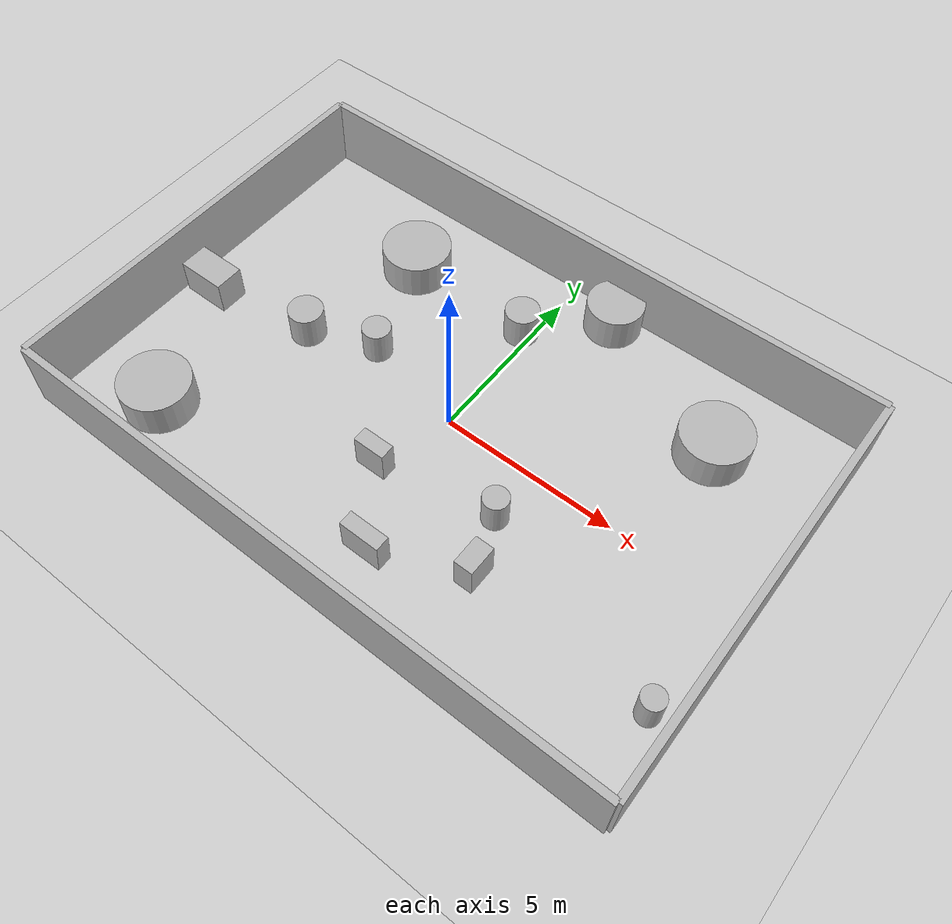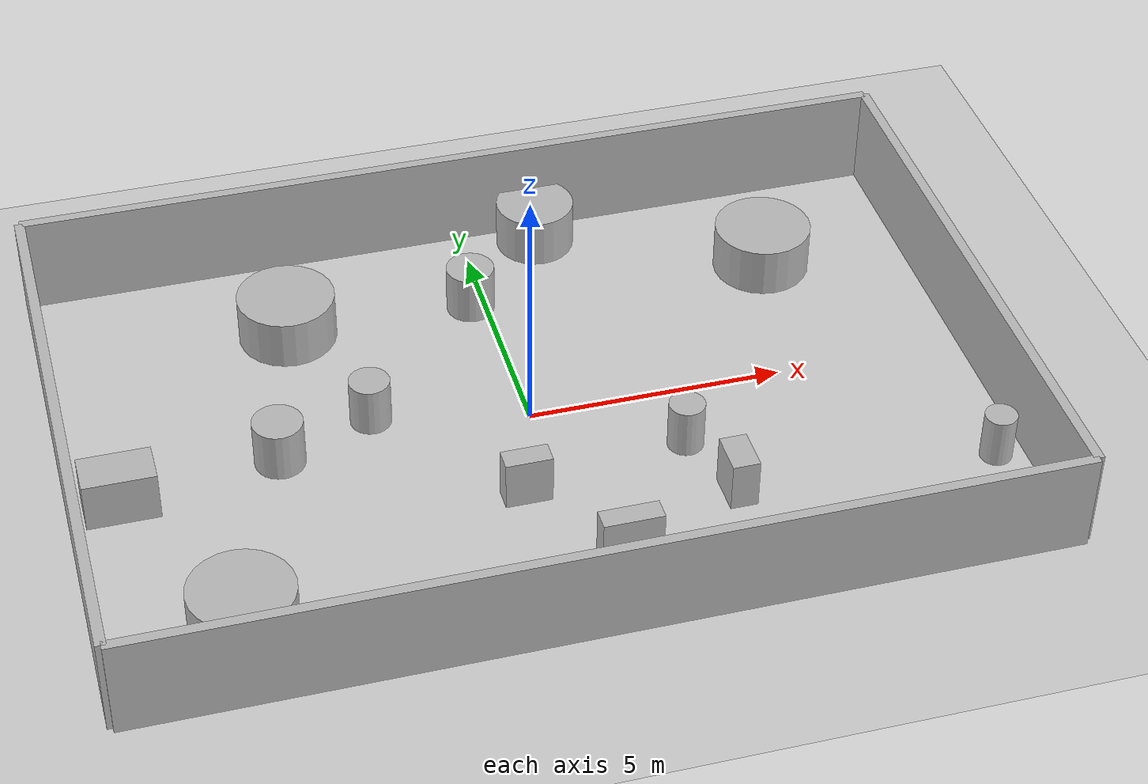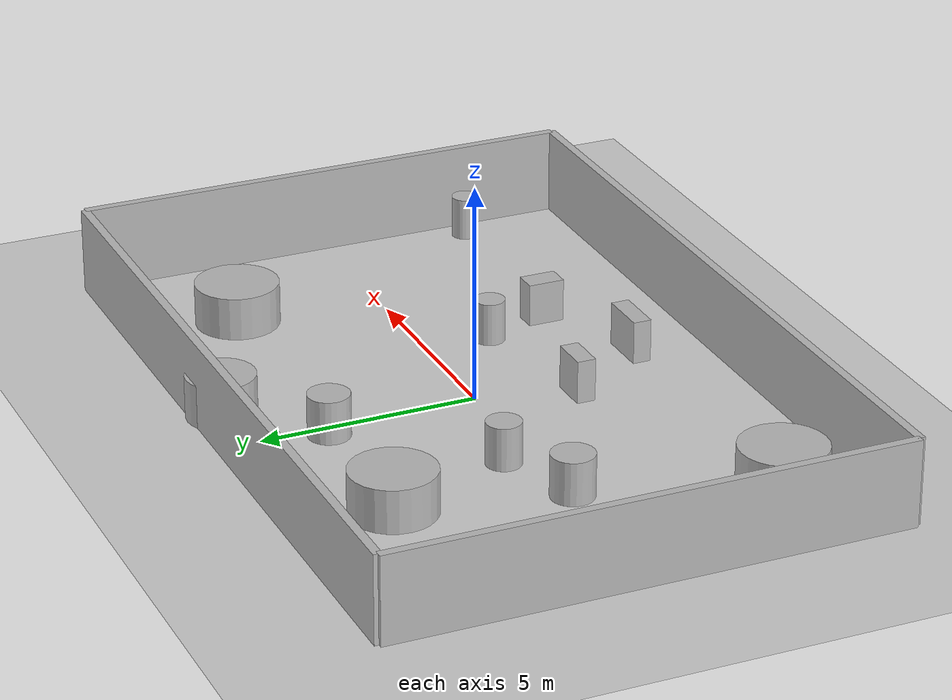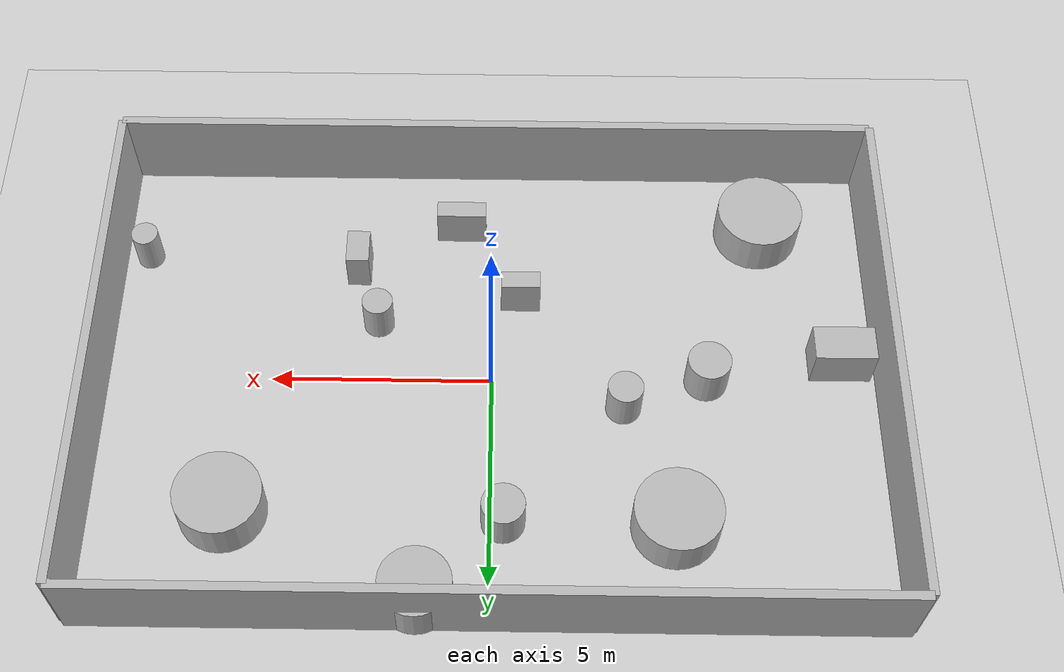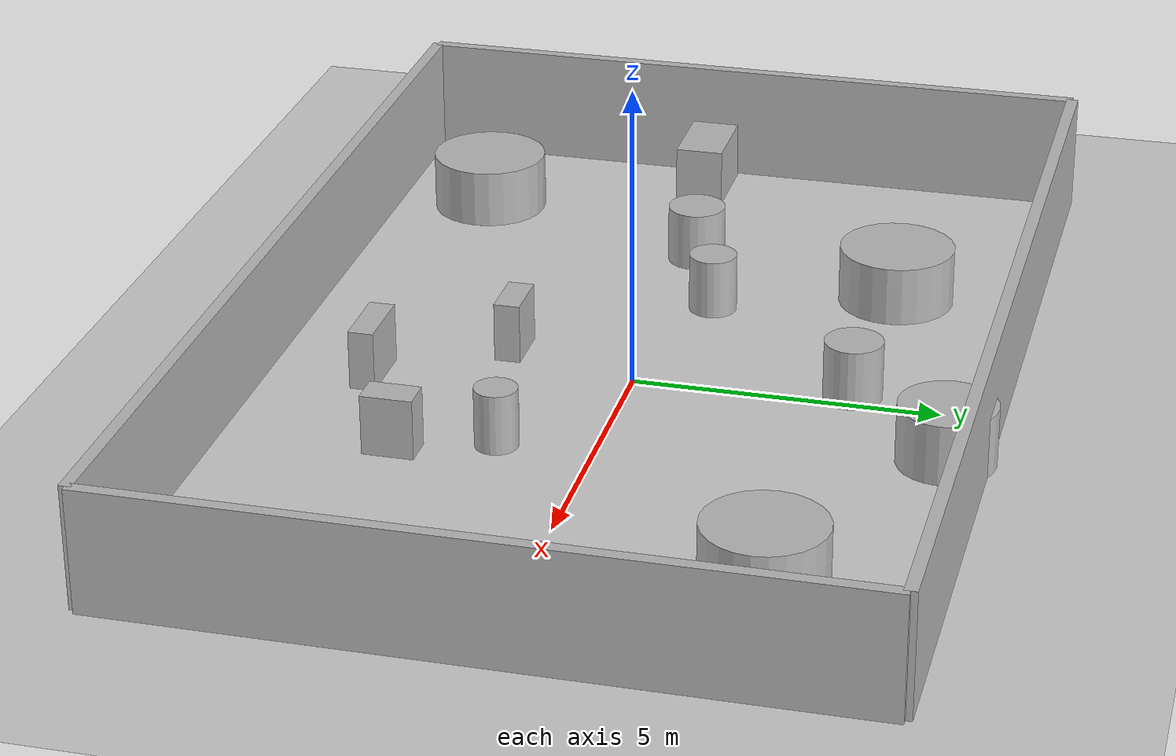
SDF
<?xml version="1.0"?>
<sdf version="1.6">
  <world name="env_99">

    <include><uri>model://ground_plane</uri></include>
    <include><uri>model://sun</uri></include>

    <!-- WALLS -->
    <model name="wall_north"><static>true</static><pose>0 5.911031012696287 1 0 0 0</pose>
      <link name="link"><collision name="collision">
        <geometry><box><size>17.67188668978008 0.2 2</size></box></geometry>
      </collision><visual name="visual">
        <geometry><box><size>17.67188668978008 0.2 2</size></box></geometry>
      </visual></link>
    </model>

    <model name="wall_south"><static>true</static><pose>0 -5.911031012696287 1 0 0 0</pose>
      <link name="link"><collision name="collision">
        <geometry><box><size>17.67188668978008 0.2 2</size></box></geometry>
      </collision><visual name="visual">
        <geometry><box><size>17.67188668978008 0.2 2</size></box></geometry>
      </visual></link>
    </model>

    <model name="wall_east"><static>true</static><pose>8.83594334489004 0 1 0 0 1.57</pose>
      <link name="link"><collision name="collision">
        <geometry><box><size>11.822062025392574 0.2 2</size></box></geometry>
      </collision><visual name="visual">
        <geometry><box><size>11.822062025392574 0.2 2</size></box></geometry>
      </visual></link>
    </model>

    <model name="wall_west"><static>true</static><pose>-8.83594334489004 0 1 0 0 1.57</pose>
      <link name="link"><collision name="collision">
        <geometry><box><size>11.822062025392574 0.2 2</size></box></geometry>
      </collision><visual name="visual">
        <geometry><box><size>11.822062025392574 0.2 2</size></box></geometry>
      </visual></link>
    </model>

    <!-- SENSOR -->

    <model name="lidar_sensor">
      <static>true</static>
      <pose>-4.050110909966754 -1.6473888161850012 0.4 0 0 0</pose>
      <link name="link">
        <sensor name="lidar" type="ray">
          <pose>0 0 0 0 0 0</pose>
          <visualize>true</visualize>
          <always_on>true</always_on>
          <update_rate>10</update_rate>
          <ray>
            <scan><horizontal>
              <samples>90</samples>
              <resolution>1</resolution>
              <min_angle>-3.14159</min_angle>
              <max_angle>3.14159</max_angle>
            </horizontal></scan>
            <range><min>0.15</min><max>20.0</max><resolution>0.01</resolution></range>
          </ray>
          <plugin name="lidar_plugin" filename="liblidar_plugin.so"/>
        </sensor>
      </link>
    </model>

    <!-- OBSTACLES -->

    <model name="obstacle_0">
      <static>true</static>
      <pose>-7.935569302428767 -0.556256017644503 0.5 0 0 0</pose>
      <link name="link">
        <collision name="collision">
          <geometry><box><size>1.39 0.83 1.0</size></box></geometry>
        </collision>
        <visual name="visual">
          <geometry><box><size>1.39 0.83 1.0</size></box></geometry>
        </visual>
      </link>
    </model>

    <model name="obstacle_1">
      <static>true</static>
      <pose>-0.6460049235547727 -2.1581690986703883 0.5 0 0 0</pose>
      <link name="link">
        <collision name="collision">
          <geometry><box><size>0.9 0.43 1.0</size></box></geometry>
        </collision>
        <visual name="visual">
          <geometry><box><size>0.9 0.43 1.0</size></box></geometry>
        </visual>
      </link>
    </model>

    <model name="obstacle_2">
      <static>true</static>
      <pose>0.7619103517793544 -4.137849236651459 0.5 0 0 0</pose>
      <link name="link">
        <collision name="collision">
          <geometry><box><size>1.15 0.42 1.0</size></box></geometry>
        </collision>
        <visual name="visual">
          <geometry><box><size>1.15 0.42 1.0</size></box></geometry>
        </visual>
      </link>
    </model>

    <model name="obstacle_3">
      <static>true</static>
      <pose>1.512641907045845 5.318296986352842 0.5 0 0 0</pose>
      <link name="link">
        <collision name="collision">
          <geometry><cylinder><radius>0.79</radius><length>1.0</length></cylinder></geometry>
        </collision>
        <visual name="visual">
          <geometry><cylinder><radius>0.79</radius><length>1.0</length></cylinder></geometry>
        </visual>
      </link>
    </model>

    <model name="obstacle_4">
      <static>true</static>
      <pose>5.783840175625224 3.3577693230399808 0.5 0 0 0</pose>
      <link name="link">
        <collision name="collision">
          <geometry><cylinder><radius>0.97</radius><length>1.0</length></cylinder></geometry>
        </collision>
        <visual name="visual">
          <geometry><cylinder><radius>0.97</radius><length>1.0</length></cylinder></geometry>
        </visual>
      </link>
    </model>

    <model name="obstacle_5">
      <static>true</static>
      <pose>8.177270276843139 -3.333133592307585 0.5 0 0 0</pose>
      <link name="link">
        <collision name="collision">
          <geometry><cylinder><radius>0.31</radius><length>1.0</length></cylinder></geometry>
        </collision>
        <visual name="visual">
          <geometry><cylinder><radius>0.31</radius><length>1.0</length></cylinder></geometry>
        </visual>
      </link>
    </model>

    <model name="obstacle_6">
      <static>true</static>
      <pose>-6.286540681943146 -4.197683270139932 0.5 0 0 0</pose>
      <link name="link">
        <collision name="collision">
          <geometry><cylinder><radius>0.99</radius><length>1.0</length></cylinder></geometry>
        </collision>
        <visual name="visual">
          <geometry><cylinder><radius>0.99</radius><length>1.0</length></cylinder></geometry>
        </visual>
      </link>
    </model>

    <model name="obstacle_7">
      <static>true</static>
      <pose>2.630593176780364 -1.5219309431685026 0.5 0 0 0</pose>
      <link name="link">
        <collision name="collision">
          <geometry><cylinder><radius>0.35</radius><length>1.0</length></cylinder></geometry>
        </collision>
        <visual name="visual">
          <geometry><cylinder><radius>0.35</radius><length>1.0</length></cylinder></geometry>
        </visual>
      </link>
    </model>

    <model name="obstacle_8">
      <static>true</static>
      <pose>3.154053267400167 -3.0471753907637558 0.5 0 0 0</pose>
      <link name="link">
        <collision name="collision">
          <geometry><box><size>0.53 0.84 1.0</size></box></geometry>
        </collision>
        <visual name="visual">
          <geometry><box><size>0.53 0.84 1.0</size></box></geometry>
        </visual>
      </link>
    </model>

    <model name="obstacle_9">
      <static>true</static>
      <pose>-4.869757703861327 -0.05454857326770046 0.5 0 0 0</pose>
      <link name="link">
        <collision name="collision">
          <geometry><cylinder><radius>0.49</radius><length>1.0</length></cylinder></geometry>
        </collision>
        <visual name="visual">
          <geometry><cylinder><radius>0.49</radius><length>1.0</length></cylinder></geometry>
        </visual>
      </link>
    </model>

    <model name="obstacle_10">
      <static>true</static>
      <pose>-4.016574023010704 3.6021412917434885 0.5 0 0 0</pose>
      <link name="link">
        <collision name="collision">
          <geometry><cylinder><radius>0.97</radius><length>1.0</length></cylinder></geometry>
        </collision>
        <visual name="visual">
          <geometry><cylinder><radius>0.97</radius><length>1.0</length></cylinder></geometry>
        </visual>
      </link>
    </model>

    <model name="obstacle_11">
      <static>true</static>
      <pose>-2.9767575070857086 0.6550035852369938 0.5 0 0 0</pose>
      <link name="link">
        <collision name="collision">
          <geometry><cylinder><radius>0.4</radius><length>1.0</length></cylinder></geometry>
        </collision>
        <visual name="visual">
          <geometry><cylinder><radius>0.4</radius><length>1.0</length></cylinder></geometry>
        </visual>
      </link>
    </model>

    <model name="obstacle_12">
      <static>true</static>
      <pose>-0.29778590371322267 3.5357812463438902 0.5 0 0 0</pose>
      <link name="link">
        <collision name="collision">
          <geometry><cylinder><radius>0.48</radius><length>1.0</length></cylinder></geometry>
        </collision>
        <visual name="visual">
          <geometry><cylinder><radius>0.48</radius><length>1.0</length></cylinder></geometry>
        </visual>
      </link>
    </model>

  </world>
</sdf>
